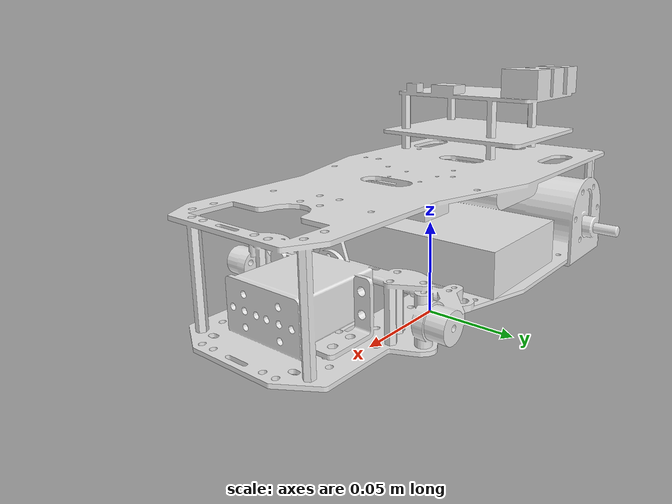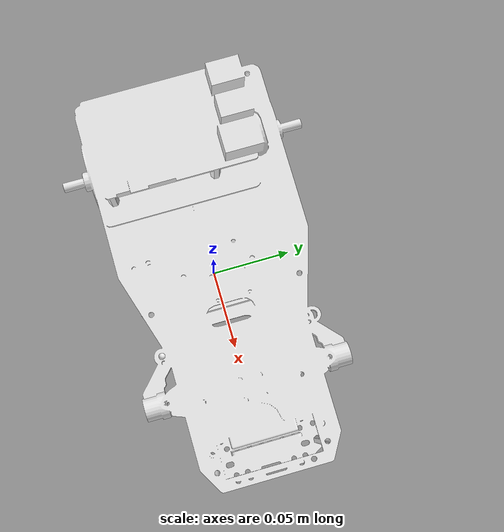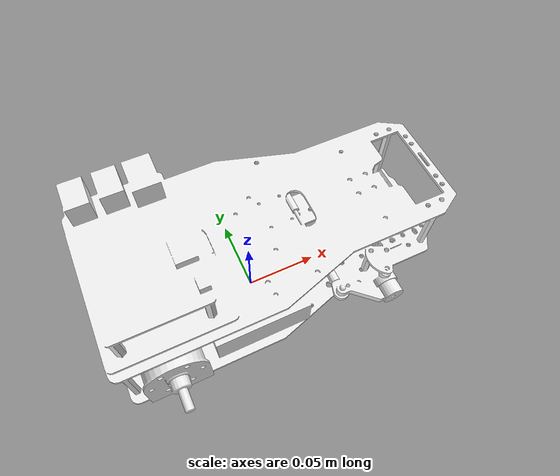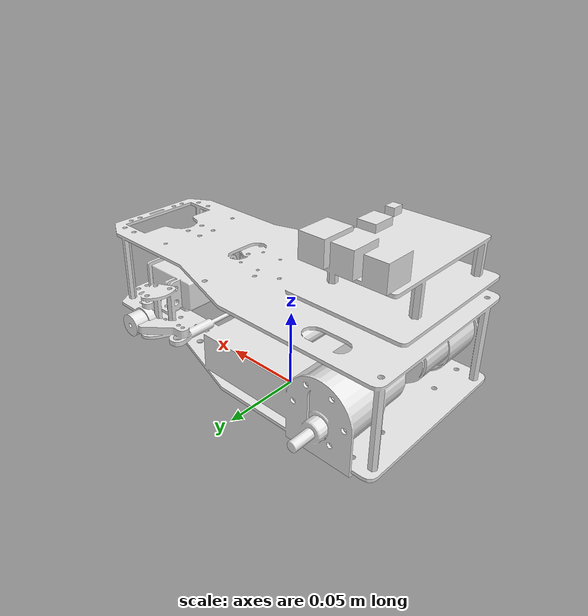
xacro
<?xml version="1.0" encoding="utf-8"?>
<robot name="test" xmlns:xacro="http://www.ros.org/wiki/xacro">
    <xacro:macro name="box_inertial_matrix" params="m w h d">
        <inertial>
            <origin xyz="0 0 0" rpy="0 0 0" />
            <mass value="${m}" />
            <inertia ixx="${m*(d*d+h*h)/12}" ixy = "0" ixz = "0"
                iyy="${m*(w*w+h*h)/12}" iyz = "0"
                izz="${m*(w*w+d*d)/12}" />
        </inertial>
    </xacro:macro>
<!--//////////////////////////////////base_link///////////////////////////////////////////-->
    <xacro:property name="box_length" value="0.6" />
    <xacro:property name="box_height" value="0.5" />
    <xacro:property name="box_width" value="0.1" />
    <xacro:property name="box_mass"   value="1.0" />
    <xacro:property name="box_position_x" value="0" />
    <xacro:property name="box_position_y" value="0" />
    <xacro:property name="box_position_z" value="0.025" />
    <link name="base_footprint"/>
    <gazebo reference="base_footprint">
        <gravity>false</gravity>
    </gazebo>
    <joint name="base_footprint_joint" type="fixed">
      <origin xyz="${box_position_x} ${box_position_y} ${box_position_z}" rpy="0 0 0" />
      <parent link="base_footprint"/>
      <child link="base_link"/>
    </joint>
    <link name="base_link">
      <box_inertial_matrix  m="${box_mass}" w="${box_length}" h="${box_height}" d="${box_width}"/>
      <visual>
        <origin xyz="0 0 0" rpy="0 0 0" />
        <geometry>
          <mesh filename="package://wheeltec_description/meshes/mini_akm/base_link.STL" />
        </geometry>
        <material name="White"/>
      </visual>
      <collision>
        <origin xyz="0 0 0" rpy="0 0 0" />
        <geometry>
          <mesh  filename="package://wheeltec_description/meshes/mini_akm/base_link.STL" />
        </geometry>
      </collision>
    </link>
    <gazebo reference="base_link">
        <material>Gazebo/Grey</material>
    </gazebo>
<!--//////////////////////////////////camera_link///////////////////////////////////////////-->
<!--//////////////////////////////////rplidar_link///////////////////////////////////////////-->
</robot>
